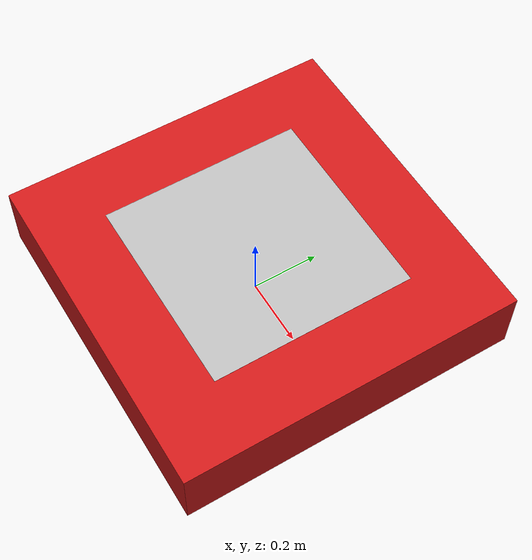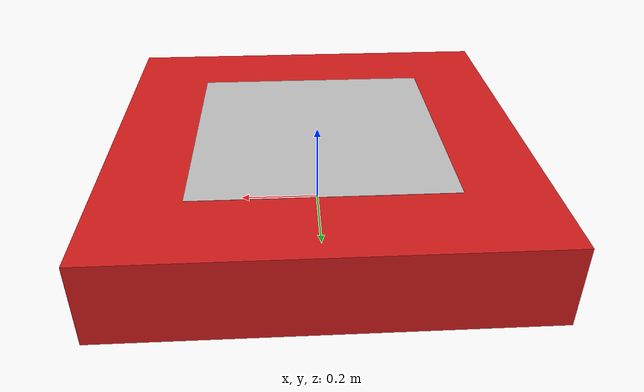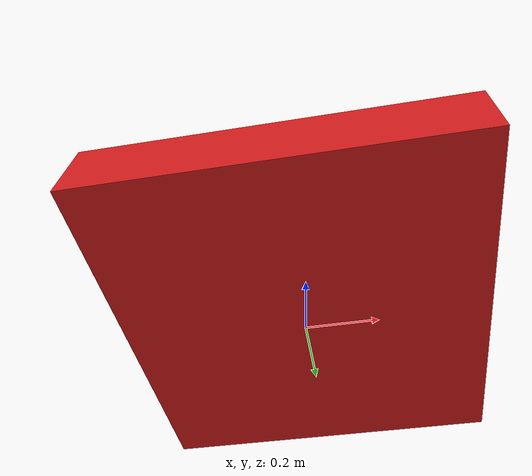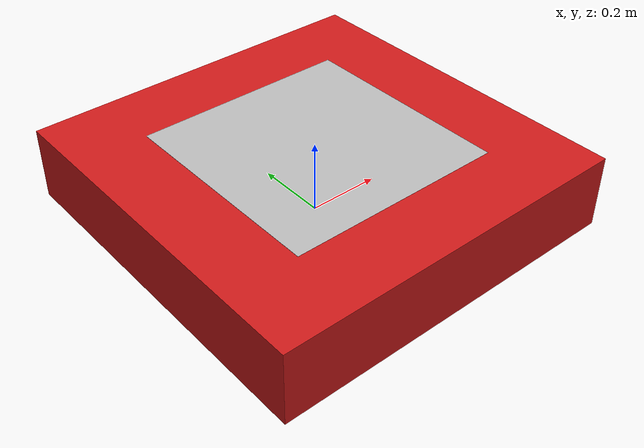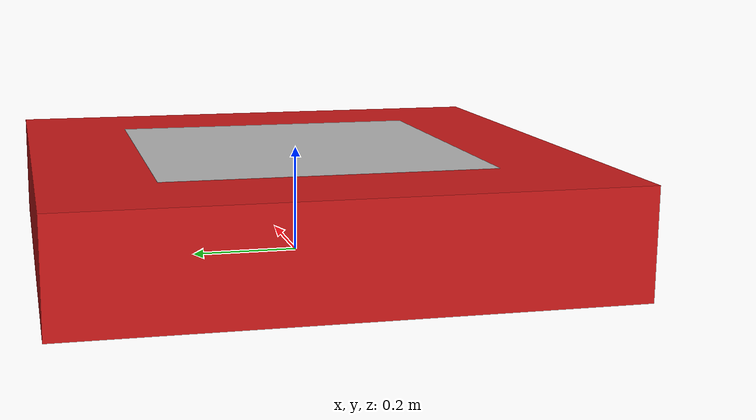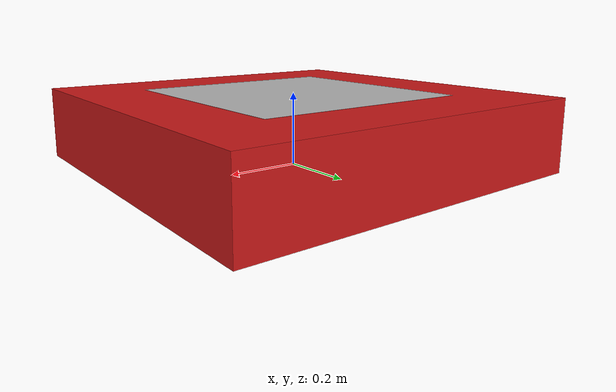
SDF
<?xml version="1.0"?>
<sdf version="1.5">
  <model name="aruco_pad">
    <static>false</static>
    <link name="base_link">
      <pose>0 0 0.1 0 0 0</pose>
      <inertial>
        <mass>5.0</mass>
        <inertia>
          <ixx>0.1</ixx>
          <iyy>0.1</iyy>
          <izz>0.1</izz>
          <ixy>0</ixy>
          <ixz>0</ixz>
          <iyz>0</iyz>
        </inertia>
      </inertial>

      <collision name="collision">
        <geometry>
          <box>
            <size>1.0 1.0 0.2</size>
          </box>
        </geometry>
      </collision>

      <visual name="body_visual">
        <geometry>
          <box>
            <size>1.0 1.0 0.2</size>
          </box>
        </geometry>
        <material>
          <ambient>0.8 0.1 0.1 1</ambient>
          <diffuse>0.8 0.1 0.1 1</diffuse>
        </material>
      </visual>

      <visual name="aruco_visual">
        <pose>0 0 0.101 0 0 0</pose>
        <geometry>
          <plane>
            <normal>0 0 1</normal>
            <size>0.6 0.6</size>
          </plane>
        </geometry>
        <material>
          <script>
            <uri>model://aruco_pad/materials/scripts</uri>
            <uri>model://aruco_pad/materials/textures</uri>
            <name>ArucoPad/Marker</name>
          </script>
        </material>
      </visual>
    </link>

    <!-- Use planar move plugin to allow ROS to send velocity commands to it -->
    <plugin name="object_controller" filename="libgazebo_ros_planar_move.so">
      <commandTopic>target/cmd_vel</commandTopic>
      <odometryTopic>target/odom</odometryTopic>
      <odometryFrame>odom</odometryFrame>
      <odometryRate>20.0</odometryRate>
      <robotBaseFrame>base_link</robotBaseFrame>
    </plugin>
  </model>
</sdf>
